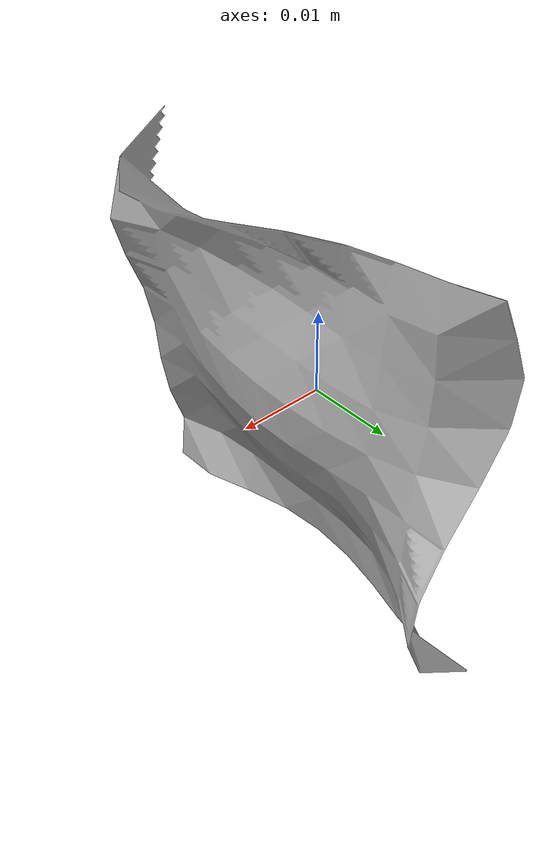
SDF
<?xml version='1.0'?>
<sdf version='1.6'>
  <model name="ID8_130">
  <static>true</static>
    <link name="link">
      <collision name="collision">
        <geometry>
          <mesh>
            <uri>model://test/meshes/ID8_130.dae</uri>
          </mesh>
        </geometry>
      </collision>

      <visual name='visual'>
        <geometry>
          <mesh>
            <uri>model://ID8_130/meshes/ID8_130.dae</uri>
          </mesh>
        </geometry>
      </visual>
    </link>

    </model>
  </sdf>
